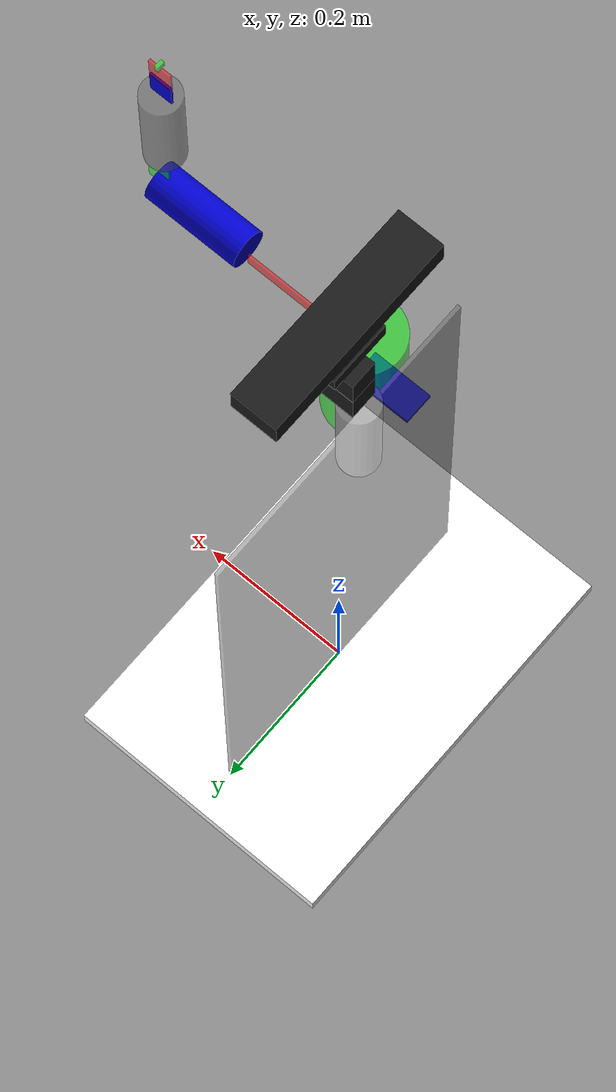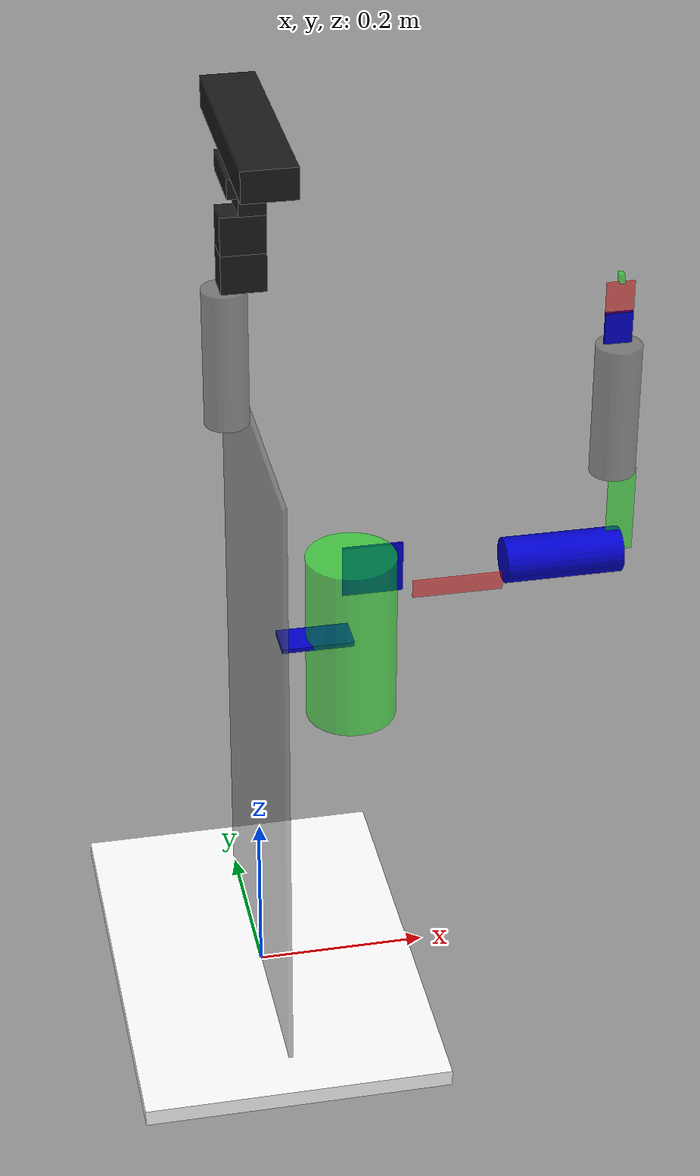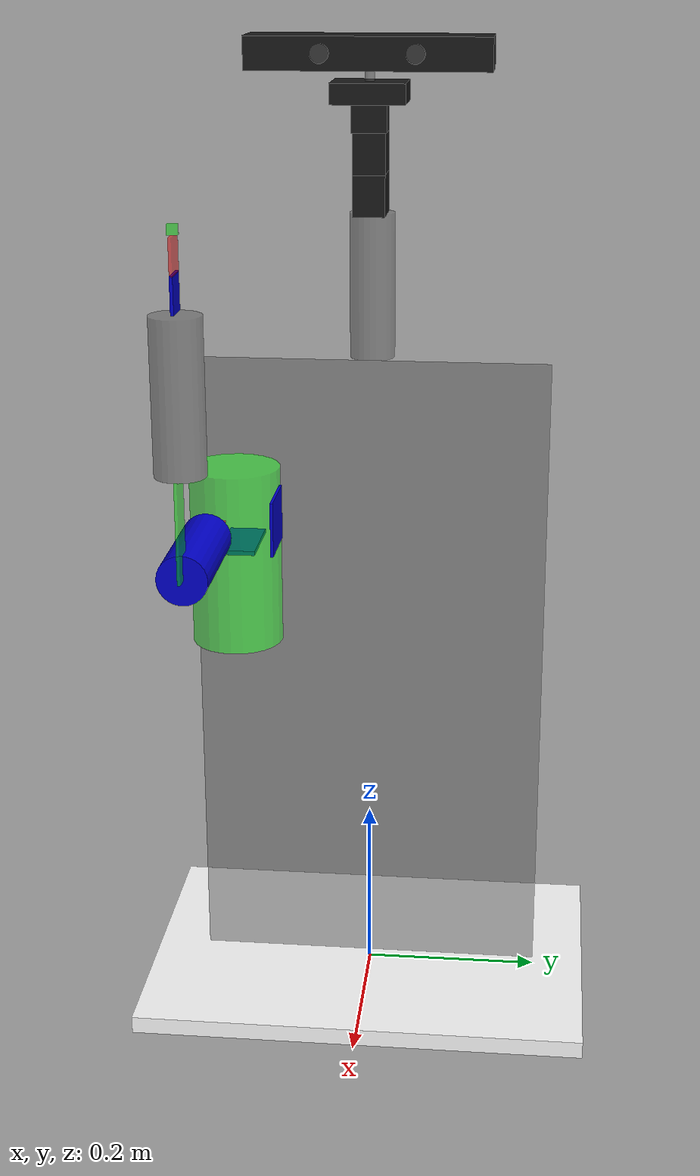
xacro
<?xml version="1.0"?>

<!-- XML namespaces -->
<robot xmlns:sensor="http://playerstage.sourceforge.net/gazebo/xmlschema/#sensor"
       xmlns:controller="http://playerstage.sourceforge.net/gazebo/xmlschema/#controller"
       xmlns:interface="http://playerstage.sourceforge.net/gazebo/xmlschema/#interface"
       xmlns:xacro="http://ros.org/wiki/xacro"
	   name="maggie">

	<include filename="$(find pr2_description)/urdf/materials.urdf.xacro" />
	<include filename="$(find pr2_description)/urdf/gripper_v0/gripper.urdf.xacro" />

	<xacro:macro name="white">
		<material name="white">
			<color rgba="1.0 1.0 1.0 1.0"/>
		</material>
	</xacro:macro>

	<xacro:macro name="black">
		<material name="black">
			<color rgba="0.1 0.1 0.1 1.0"/>
		</material>
	</xacro:macro>

	<xacro:macro name="grey1">
		<material name="grey1">
			<color rgba="0.41 0.41 0.41 0.5"/>
		</material>
	</xacro:macro>

	<xacro:macro name="blue1">
		<material name="blue1">
			<color rgba="0 0 .8 1"/>
		</material>
	</xacro:macro>

	<xacro:macro name="green1">
		<material name="green1">
			<color rgba="0 1 0 0.5"/>
		</material>
	</xacro:macro>

	<xacro:macro name="red1">
	  <material name="red1">
	    <color rgba="1 0 0 0.5"/>
		</material>
	</xacro:macro>

	<xacro:macro name="ax12_color">
		<material name="ax12_color">
			<color rgba="0.1 0.1 0.1 1.0"/>
		</material>
	</xacro:macro>

	<xacro:macro name="bracket_color">
		<material name="bracket_color">
			<color rgba="0.9 0.9 0.9 1.0"/>
		</material>
	</xacro:macro>

	<xacro:macro name="my_box" params="name lwh xyz rpy mass material *rviz_color">
		<link name="${name}">
			<visual>
				<origin xyz="${xyz}" rpy="${rpy}" />
				<geometry>
					<box size="${lwh}" />
				</geometry>
			    <xacro:insert_block name="rviz_color" />
             </visual>
             <collision>
				<origin xyz="${xyz}" rpy="${rpy}" />
					<geometry>
						<box size="${lwh}" />
					</geometry>
             </collision>
             <xacro:default_inertial mass="${mass}" />
        </link>
        <xacro:default_gazebo name="${name}" material="${material}" />
	</xacro:macro>

	<xacro:macro name="my_cylinder" params="name l r xyz rpy mass material *rviz_color">
		<link name="${name}">
			<visual>
				<origin xyz="${xyz}" rpy="${rpy}" />
				<geometry>
					<cylinder length="${l}" radius="${r}"/>
				</geometry>
				<xacro:insert_block name="rviz_color" />
			</visual>
			<collision>
				<origin xyz="${xyz}" rpy="${rpy}" />
					<geometry>
						<cylinder length="${l}" radius="${r}" />
					</geometry>
			</collision>
			<xacro:default_inertial mass="${mass}" />
		</link>
        <xacro:default_gazebo name="${name}" material="${material}" />
	</xacro:macro>

    <xacro:macro name="default_gazebo" params="name material">
 		<gazebo reference="${name}">
			<material>${material}</material>
			<selfCollide>false</selfCollide>
			<turnGravityOff>true</turnGravityOff>
		</gazebo>
    </xacro:macro>

 	<!-- ============================   Body   ============================ -->

	<xacro:my_box name="base_link" lwh="0.36 0.52 0.02" xyz="0 0 0" rpy="0 0 0" mass="0.5" material="Gazebo/WhiteEmissive">
		<xacro:white />
	</xacro:my_box>

 	<xacro:my_box name="torso_link" lwh="0.005 0.4 0.752" xyz="0 0 0" rpy="0 0 0" mass="0.5" material="Gazebo/WhiteEmissive">
		<xacro:grey1 />
	</xacro:my_box>

	<xacro:my_box name="shoulder_pan_support_link" lwh="0.08 0.04 0.005" xyz="0 0 0" rpy="0 0 0" mass="0.5" material="Gazebo/WhiteEmissive">
		<xacro:blue1 />
	</xacro:my_box>

 	<xacro:my_cylinder name="shoulder_pan_link" l="0.2" r="0.05" xyz="0 0 0" rpy="0 0 0" mass="0.5" material="Gazebo/WhiteEmissive">
		<xacro:green1 />
	</xacro:my_cylinder>

	<xacro:my_box name="shoulder_tilt_support_link" lwh="0.068 0.003 0.06" xyz="0 0 0" rpy="0 0 0" mass="0.5" material="Gazebo/WhiteEmissive">
		<xacro:blue1 />
	</xacro:my_box>

	<xacro:my_box name="shoulder_tilt_link" lwh="0.1 0.003 0.02" xyz="0.05 0 0" rpy="0 0 0" mass="0.5" material="Gazebo/WhiteEmissive">
		<xacro:red1 />
	</xacro:my_box>

	<xacro:my_cylinder name="upper_arm_link" l="0.13" r="0.025" xyz="0.065 0 0" rpy="0 1.57 0" mass="0.5" material="Gazebo/WhiteEmissive">
		<xacro:blue1 />
	</xacro:my_cylinder>

	<xacro:my_box name="elbow_tilt_link" lwh="0.1 0.003 0.03" xyz="0.05 0 0" rpy="0 0 0" mass="0.5" material="Gazebo/WhiteEmissive">
		<xacro:green1 />
	</xacro:my_box>

	<xacro:my_cylinder name="forearm_link" l="0.151" r="0.025" xyz="0.075 0 0" rpy="0 1.57 0" mass="0.5" material="Gazebo/WhiteEmissive">
		<xacro:grey1 />
	</xacro:my_cylinder>

	<xacro:my_box name="wrist_tilt_link" lwh="0.036 0.003 0.03" xyz="0.018 0 0" rpy="0 0 0" mass="0.5" material="Gazebo/WhiteEmissive">
		<xacro:blue1 />
	</xacro:my_box>

	<xacro:my_box name="wrist_roll_link" lwh="0.035 0.003 0.03" xyz="0.0175 0 0" rpy="0 0 0" mass="0.5" material="Gazebo/WhiteEmissive">
		<xacro:red1 />
	</xacro:my_box>

	<xacro:my_box name="hand_link" lwh="0.01 0.01 0.005" xyz="0.005 0 0" rpy="0 0 0" mass="0.001" material="Gazebo/WhiteEmissive">
	  <xacro:green1 />
	</xacro:my_box>

	<!-- head links -->
	<xacro:my_cylinder name="lower_neck_link" l="0.16" r="0.025" xyz="0 0 0.079" rpy="0 0 0" mass="0.05" material="Gazebo/WhiteEmissive">
		<xacro:grey1 />
	</xacro:my_cylinder>

	<xacro:my_box name="head_pan_servo_link" lwh="0.05 0.035 0.044" xyz="-0.01 0 0.022" rpy="0 0 0" mass="0.055" material="Gazebo/FlatBlack">
		<xacro:ax12_color />
	</xacro:my_box>

	<xacro:my_box name="head_pan_link" lwh="0.05 0.035 0.044" xyz="-0.01 0 0.022" rpy="0 0 0" mass="0.055" material="Gazebo/FlatBlack">
		<xacro:ax12_color />
	</xacro:my_box>

	<xacro:my_box name="head_tilt_link" lwh="0.03 0.038 0.030" xyz="0 0 0.015" rpy="0 0 0" mass="0.055" material="Gazebo/FlatBlack">
		<xacro:ax12_color />
	</xacro:my_box>

	<xacro:my_box name="head_base_link" lwh="0.06 0.08 0.022" xyz="0 0 0.011" rpy="0 0 0" mass="0.1" material="Gazebo/FlatBlack">
		<xacro:black />
	</xacro:my_box>

	<xacro:my_cylinder name="head_post_link" l="0.012" r="0.005" xyz="0 0 0.006" rpy="0 0 0" mass="0.1" material="Gazebo/WhiteEmissive">
		<xacro:grey1 />
	</xacro:my_cylinder>

	<xacro:my_box name="head_link" lwh="0.06 0.26 0.035" xyz="0 0 0.0175" rpy="0 0 0" mass="0.8" material="Gazebo/FlatBlack">
		<xacro:black />
	</xacro:my_box>

	<xacro:my_cylinder name="left_eye_link" l="0.01" r="0.01" xyz="0 0 0" rpy="0 0 0" mass="0.001" material="Gazebo/WhiteEmissive">
		<xacro:grey1 />
	</xacro:my_cylinder>

	<xacro:my_cylinder name="right_eye_link" l="0.01" r="0.01" xyz="0 0 0" rpy="0 0 0" mass="0.001" material="Gazebo/WhiteEmissive">
		<xacro:grey1 />
	</xacro:my_cylinder>
 	<!-- ============================   Arms   ============================ -->

	<!-- =================== Joint Definitions ==================== -->

	<!-- head joints -->
	<joint name="lower_neck_joint" type="fixed">
    	<parent link="torso_link" />
    	<child link="lower_neck_link" />
    	<origin xyz="-0.0275 0 0.376" rpy="0 0 0" />
	</joint>

	<joint name="head_pan_servo_joint" type="fixed">
    	<parent link="lower_neck_link" />
    	<child link="head_pan_servo_link" />
    	<origin xyz="0.029 0 0.16" rpy="0 0 0" />
	</joint>

	<joint name="head_pan_joint" type="revolute">
    	<parent link="head_pan_servo_link" />
    	<child link="head_pan_link" />
    	<origin xyz="0 0 0.044" rpy="0 0 0" />
    	<axis xyz="0 0 1" />
    	<limit lower="-3.1416" upper="3.1416" effort="10" velocity="3" />
      	<dynamics damping="0.0"/>
	</joint>

	<joint name="head_tilt_joint" type="revolute">
    	<parent link="head_pan_link" />
	<child link="head_tilt_link" />
    	<origin xyz="0 0 0.044" rpy="0 0 0" />
    	<axis xyz="0 1 0" />
    	<limit lower="-1.57" upper="1.57" effort="10" velocity="3" />
      	<dynamics damping="0.0"/>
	</joint>

	<joint name="upper_neck_joint" type="fixed">
    	<parent link="head_tilt_link" />
    	<child link="head_base_link" />
    	<origin xyz="0 0 0.030" rpy="0 0 0" />
	</joint>

	<joint name="head_base_joint" type="fixed">
    	<parent link="head_base_link" />
    	<child link="head_post_link" />
    	<origin xyz="0 0 0.022" rpy="0 0 0" />
	</joint>

	<joint name="head_joint" type="fixed">
    	<parent link="head_post_link" />
    	<child link="head_link" />
    	<origin xyz="0 0 0.012" rpy="0 0 0" />
	</joint>

	<joint name="left_eye_joint" type="fixed">
    	<parent link="head_link" />
    	<child link="left_eye_link" />
    	<origin xyz="0.026 0.05 0.0175" rpy="0 1.57 0" />
	</joint>

	<joint name="right_eye_joint" type="fixed">
    	<parent link="head_link" />
    	<child link="right_eye_link" />
    	<origin xyz="0.026 -0.05 0.0175" rpy="0 1.57 0" />
	</joint>

	<!-- Arm Joints -->

	<joint name="hand_joint" type="fixed">
	  <parent link="wrist_roll_link" />
	  <child link="hand_link" />
	  <origin xyz="0.0351 0 0" rpy="0 0 0" />
        </joint>

	<joint name="wrist_roll_joint" type="revolute">
	  <parent link="wrist_tilt_link" />
	  <child link="wrist_roll_link" />
	  <axis xyz="1 0 0"/>
	  <origin xyz="0.0351 0 0" rpy="0 0 0" />
	  <limit lower="-2.61" upper="2.61" effort="1.0" velocity="1.0" />
	</joint>

	<joint name="wrist_tilt_joint" type="revolute">
	  <parent link="forearm_link" />
	  <child link="wrist_tilt_link" />
	  <axis xyz="0 1 0"/>
	  <origin xyz="0.152 0 0.002" rpy="0 0 0" />
	  <limit lower="-1.57" upper="1.57" effort="1.0" velocity="1.0" />
	</joint>

	<joint name="forearm_roll_joint" type="revolute">
	  <parent link="elbow_tilt_link" />
	  <child link="forearm_link" />
	  <axis xyz="1 0 0"/>
	  <origin xyz="0.1 0 0.012" rpy="0 0 0" />
	  <limit lower="-2.61" upper="2.61" effort="1.0" velocity="1.0" />
	</joint>

	<joint name="elbow_tilt_joint" type="revolute">
	  <parent link="upper_arm_link" />
	  <child link="elbow_tilt_link" />
	  <axis xyz="0 1 0"/>
	  <origin xyz="0.129 0 0" rpy="0 -1.57 0" />
	  <limit lower="-2.61" upper="2.61" effort="1.0" velocity="1.0" />
	</joint>

	<joint name="upper_arm_roll_joint" type="revolute">
	  <parent link="shoulder_tilt_link" />
	  <child link="upper_arm_link" />
	  <axis xyz="1 0 0"/>
	  <origin xyz="0.1 0 0.025" rpy="0 0 0" />
	  <limit lower="-2.61" upper="2.61" effort="1.0" velocity="1.0" />
	</joint>

	<joint name="shoulder_tilt_joint" type="revolute">
	  <parent link="shoulder_tilt_support_link" />
	  <child link="shoulder_tilt_link" />
	  <axis xyz="0 1 0"/>
	  <origin xyz="0.034 -0.05 0" rpy="0 0 0" />
	  <limit lower="-1.57" upper="1.57" effort="1.0" velocity="1.0" />
	</joint>

	<joint name="shoulder_tilt_support_joint" type="fixed">
	  <parent link="shoulder_pan_link" />
	  <child link="shoulder_tilt_support_link" />
	  <origin xyz="0.034 0.05 0.05" rpy="0 0 0" />
	</joint>

	<joint name="shoulder_pan_joint" type="revolute">
	  <parent link="shoulder_pan_support_link" />
	  <child link="shoulder_pan_link" />
	  <axis xyz="0.0 0 1"/>
	  <origin xyz="0.04 0 0" rpy="0 0 0" />
	  <limit lower="-1.57" upper="1.57" effort="1.0" velocity="1.0" />
	</joint>

	<joint name="shoulder_pan_support_joint" type="fixed">
	  <parent link="torso_link" />
	  <child link="shoulder_pan_support_link" />
	  <origin xyz="0.0425 -0.14 0.175" rpy="0 0 0" />
	</joint>

	<joint name="torso_joint" type="fixed">
	  <parent link="base_link" />
	  <child link="torso_link" />
	  <origin xyz="0 0 0.376" rpy="0 0 0" />
	</joint>

	<gazebo reference="maggie">
  	</gazebo>
</robot>
